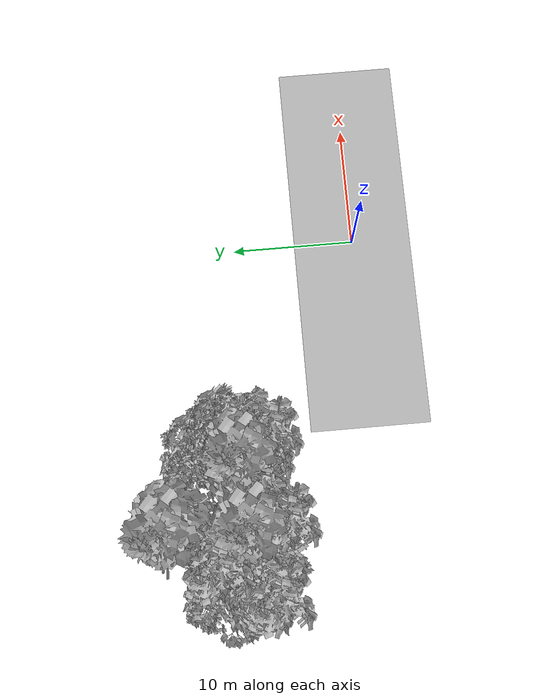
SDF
<sdf version="1.7">
 <world name="default">
  <model name="ground_plane">
   <static>1</static>
   <link name="link">
    <collision name="collision">
     <geometry><plane><normal>0 0 1</normal><size>100 100</size></plane></geometry>
     <surface><contact><ode><min_depth>0.01</min_depth><max_vel>0</max_vel></ode></contact></surface>
    </collision>
    <visual name="grass">
     <cast_shadows>0</cast_shadows>
     <geometry>
      <mesh>
       <scale>0.5814285714285714 0.18142857142857144 0.1</scale>
       <uri>file://grass_plane/meshes/grass_plane.dae</uri>
      </mesh>
     </geometry>
    </visual>
   </link>
  </model>
  <model name="Tree 29">
   <static>1</static>
   <pose>-25.047930650477866 12.277151410198769 0 1.57079 -0 0</pose>
   <link name="link">
    <collision name="collision">
     <geometry><mesh><scale>3.5 5 3.5</scale><uri>model://tree_9/meshes/tree_9.obj</uri></mesh></geometry>
    </collision>
    <visual name="visual">
     <geometry><mesh><scale>3.5 5 3.5</scale><uri>model://tree_9/meshes/tree_9.obj</uri></mesh></geometry>
    </visual>
   </link>
  </model>
  <model name="Tree 34">
   <static>1</static>
   <pose>-16.393195477185976 8.384588368217223 0 1.57079 -0 0</pose>
   <link name="link">
    <collision name="collision">
     <geometry><mesh><scale>3.5 5 3.5</scale><uri>model://tree_9/meshes/tree_9.obj</uri></mesh></geometry>
    </collision>
    <visual name="visual">
     <geometry><mesh><scale>3.5 5 3.5</scale><uri>model://tree_9/meshes/tree_9.obj</uri></mesh></geometry>
    </visual>
   </link>
  </model>
  <model name="Tree 58">
   <static>1</static>
   <pose>-27.304310047537058 8.52520005859093 0 1.57079 -0 0</pose>
   <link name="link">
    <collision name="collision">
     <geometry><mesh><scale>3.5 5 3.5</scale><uri>model://tree_9/meshes/tree_9.obj</uri></mesh></geometry>
    </collision>
    <visual name="visual">
     <geometry><mesh><scale>3.5 5 3.5</scale><uri>model://tree_9/meshes/tree_9.obj</uri></mesh></geometry>
    </visual>
   </link>
  </model>
  <model name="Tree 61">
   <static>1</static>
   <pose>-16.03302221496277 10.995600182623797 0 1.57079 -0 0</pose>
   <link name="link">
    <collision name="collision">
     <geometry><mesh><scale>3.5 5 3.5</scale><uri>model://tree_2/meshes/tree_2.obj</uri></mesh></geometry>
    </collision>
    <visual name="visual">
     <geometry><mesh><scale>3.5 5 3.5</scale><uri>model://tree_2/meshes/tree_2.obj</uri></mesh></geometry>
    </visual>
   </link>
  </model>
  <model name="Tree 92">
   <static>1</static>
   <pose>-19.690975498360626 9.313018761912737 0 1.57079 -0 0</pose>
   <link name="link">
    <collision name="collision">
     <geometry><mesh><scale>3.5 5 3.5</scale><uri>model://tree_9/meshes/tree_9.obj</uri></mesh></geometry>
    </collision>
    <visual name="visual">
     <geometry><mesh><scale>3.5 5 3.5</scale><uri>model://tree_9/meshes/tree_9.obj</uri></mesh></geometry>
    </visual>
   </link>
  </model>
  <model name="Tree 171">
   <static>1</static>
   <pose>-26.85107908857421 11.86307813516214 0 1.57079 -0 0</pose>
   <link name="link">
    <collision name="collision">
     <geometry><mesh><scale>3.5 5 3.5</scale><uri>model://tree_2/meshes/tree_2.obj</uri></mesh></geometry>
    </collision>
    <visual name="visual">
     <geometry><mesh><scale>3.5 5 3.5</scale><uri>model://tree_2/meshes/tree_2.obj</uri></mesh></geometry>
    </visual>
   </link>
  </model>
  <model name="Tree 176">
   <static>1</static>
   <pose>-22.137122668836728 14.974922414099698 0 1.57079 -0 0</pose>
   <link name="link">
    <collision name="collision">
     <geometry><mesh><scale>3.5 5 3.5</scale><uri>model://tree_4/meshes/tree_4.obj</uri></mesh></geometry>
    </collision>
    <visual name="visual">
     <geometry><mesh><scale>3.5 5 3.5</scale><uri>model://tree_4/meshes/tree_4.obj</uri></mesh></geometry>
    </visual>
   </link>
  </model>
  <model name="Tree 243">
   <static>1</static>
   <pose>-17.910769288452258 9.115354404541275 0 1.57079 -0 0</pose>
   <link name="link">
    <collision name="collision">
     <geometry><mesh><scale>3.5 5 3.5</scale><uri>model://tree_9/meshes/tree_9.obj</uri></mesh></geometry>
    </collision>
    <visual name="visual">
     <geometry><mesh><scale>3.5 5 3.5</scale><uri>model://tree_9/meshes/tree_9.obj</uri></mesh></geometry>
    </visual>
   </link>
  </model>
  <model name="Tree 264">
   <static>1</static>
   <pose>-16.903897043630657 11.478847358819827 0 1.57079 -0 0</pose>
   <link name="link">
    <collision name="collision">
     <geometry><mesh><scale>3.5 5 3.5</scale><uri>model://tree_2/meshes/tree_2.obj</uri></mesh></geometry>
    </collision>
    <visual name="visual">
     <geometry><mesh><scale>3.5 5 3.5</scale><uri>model://tree_2/meshes/tree_2.obj</uri></mesh></geometry>
    </visual>
   </link>
  </model>
  <model name="Tree 266">
   <static>1</static>
   <pose>-24.214336606143657 9.104873236581131 0 1.57079 -0 0</pose>
   <link name="link">
    <collision name="collision">
     <geometry><mesh><scale>3.5 5 3.5</scale><uri>model://tree_2/meshes/tree_2.obj</uri></mesh></geometry>
    </collision>
    <visual name="visual">
     <geometry><mesh><scale>3.5 5 3.5</scale><uri>model://tree_2/meshes/tree_2.obj</uri></mesh></geometry>
    </visual>
   </link>
  </model>
  <model name="Tree 335">
   <static>1</static>
   <pose>-17.095457537449054 9.056814146264667 0 1.57079 -0 0</pose>
   <link name="link">
    <collision name="collision">
     <geometry><mesh><scale>3.5 5 3.5</scale><uri>model://tree_9/meshes/tree_9.obj</uri></mesh></geometry>
    </collision>
    <visual name="visual">
     <geometry><mesh><scale>3.5 5 3.5</scale><uri>model://tree_9/meshes/tree_9.obj</uri></mesh></geometry>
    </visual>
   </link>
  </model>
  <model name="Tree 374">
   <static>1</static>
   <pose>-17.864967021671657 9.97522573552832 0 1.57079 -0 0</pose>
   <link name="link">
    <collision name="collision">
     <geometry><mesh><scale>3.5 5 3.5</scale><uri>model://tree_4/meshes/tree_4.obj</uri></mesh></geometry>
    </collision>
    <visual name="visual">
     <geometry><mesh><scale>3.5 5 3.5</scale><uri>model://tree_4/meshes/tree_4.obj</uri></mesh></geometry>
    </visual>
   </link>
  </model>
  <model name="Tree 386">
   <static>1</static>
   <pose>-17.632183659014082 12.912238143539227 0 1.57079 -0 0</pose>
   <link name="link">
    <collision name="collision">
     <geometry><mesh><scale>3.5 5 3.5</scale><uri>model://tree_2/meshes/tree_2.obj</uri></mesh></geometry>
    </collision>
    <visual name="visual">
     <geometry><mesh><scale>3.5 5 3.5</scale><uri>model://tree_2/meshes/tree_2.obj</uri></mesh></geometry>
    </visual>
   </link>
  </model>
  <model name="Tree 413">
   <static>1</static>
   <pose>-22.271262107603167 7.697168118981882 0 1.57079 -0 0</pose>
   <link name="link">
    <collision name="collision">
     <geometry><mesh><scale>3.5 5 3.5</scale><uri>model://tree_9/meshes/tree_9.obj</uri></mesh></geometry>
    </collision>
    <visual name="visual">
     <geometry><mesh><scale>3.5 5 3.5</scale><uri>model://tree_9/meshes/tree_9.obj</uri></mesh></geometry>
    </visual>
   </link>
  </model>
  <model name="Tree 420">
   <static>1</static>
   <pose>-22.1840358448899 9.644475138296322 0 1.57079 -0 0</pose>
   <link name="link">
    <collision name="collision">
     <geometry><mesh><scale>3.5 5 3.5</scale><uri>model://tree_4/meshes/tree_4.obj</uri></mesh></geometry>
    </collision>
    <visual name="visual">
     <geometry><mesh><scale>3.5 5 3.5</scale><uri>model://tree_4/meshes/tree_4.obj</uri></mesh></geometry>
    </visual>
   </link>
  </model>
  <model name="Bush 22">
   <static>1</static>
   <pose>-27.467559466760235 7.883037962254122 0 1.57079 -0 0</pose>
   <link name="link">
    <collision name="collision">
     <geometry><mesh><scale>2 2 2</scale><uri>model://bush_3/meshes/bush_3.obj</uri></mesh></geometry>
     <surface><contact><collide_without_contact>false</collide_without_contact></contact></surface>
    </collision>
    <visual name="visual">
     <geometry><mesh><scale>2 2 2</scale><uri>model://bush_3/meshes/bush_3.obj</uri></mesh></geometry>
    </visual>
   </link>
  </model>
  <model name="Bush 70">
   <static>1</static>
   <pose>-17.302493653415354 13.12683517811342 0 1.57079 -0 0</pose>
   <link name="link">
    <collision name="collision">
     <geometry><mesh><scale>2 2 2</scale><uri>model://bush_1/meshes/bush_1.obj</uri></mesh></geometry>
     <surface><contact><collide_without_contact>false</collide_without_contact></contact></surface>
    </collision>
    <visual name="visual">
     <geometry><mesh><scale>2 2 2</scale><uri>model://bush_1/meshes/bush_1.obj</uri></mesh></geometry>
    </visual>
   </link>
  </model>
  <model name="Bush 71">
   <static>1</static>
   <pose>-18.838231076107263 13.912579154465181 0 1.57079 -0 0</pose>
   <link name="link">
    <collision name="collision">
     <geometry><mesh><scale>2 2 2</scale><uri>model://bush_3/meshes/bush_3.obj</uri></mesh></geometry>
     <surface><contact><collide_without_contact>false</collide_without_contact></contact></surface>
    </collision>
    <visual name="visual">
     <geometry><mesh><scale>2 2 2</scale><uri>model://bush_3/meshes/bush_3.obj</uri></mesh></geometry>
    </visual>
   </link>
  </model>
  <model name="Bush 97">
   <static>1</static>
   <pose>-22.15412186854025 14.81564069259451 0 1.57079 -0 0</pose>
   <link name="link">
    <collision name="collision">
     <geometry><mesh><scale>2 2 2</scale><uri>model://bush_2/meshes/bush_2.obj</uri></mesh></geometry>
     <surface><contact><collide_without_contact>false</collide_without_contact></contact></surface>
    </collision>
    <visual name="visual">
     <geometry><mesh><scale>2 2 2</scale><uri>model://bush_2/meshes/bush_2.obj</uri></mesh></geometry>
    </visual>
   </link>
  </model>
  <model name="Bush 145">
   <static>1</static>
   <pose>-22.6764905950454 12.507733614130132 0 1.57079 -0 0</pose>
   <link name="link">
    <collision name="collision">
     <geometry><mesh><scale>2 2 2</scale><uri>model://bush_2/meshes/bush_2.obj</uri></mesh></geometry>
     <surface><contact><collide_without_contact>false</collide_without_contact></contact></surface>
    </collision>
    <visual name="visual">
     <geometry><mesh><scale>2 2 2</scale><uri>model://bush_2/meshes/bush_2.obj</uri></mesh></geometry>
    </visual>
   </link>
  </model>
  <model name="Bush 254">
   <static>1</static>
   <pose>-25.970351319650582 8.327709436711501 0 1.57079 -0 0</pose>
   <link name="link">
    <collision name="collision">
     <geometry><mesh><scale>2 2 2</scale><uri>model://bush_2/meshes/bush_2.obj</uri></mesh></geometry>
     <surface><contact><collide_without_contact>false</collide_without_contact></contact></surface>
    </collision>
    <visual name="visual">
     <geometry><mesh><scale>2 2 2</scale><uri>model://bush_2/meshes/bush_2.obj</uri></mesh></geometry>
    </visual>
   </link>
  </model>
  <model name="Bush 269">
   <static>1</static>
   <pose>-21.363205365320603 14.130302237227212 0 1.57079 -0 0</pose>
   <link name="link">
    <collision name="collision">
     <geometry><mesh><scale>2 2 2</scale><uri>model://bush_0/meshes/bush_0.obj</uri></mesh></geometry>
     <surface><contact><collide_without_contact>false</collide_without_contact></contact></surface>
    </collision>
    <visual name="visual">
     <geometry><mesh><scale>2 2 2</scale><uri>model://bush_0/meshes/bush_0.obj</uri></mesh></geometry>
    </visual>
   </link>
  </model>
 </world>
</sdf>
